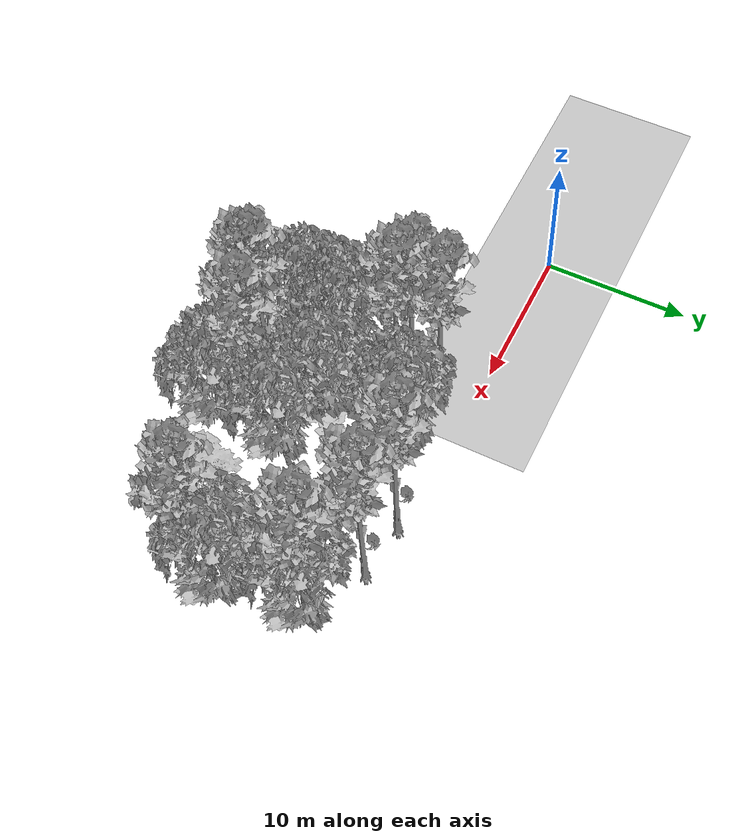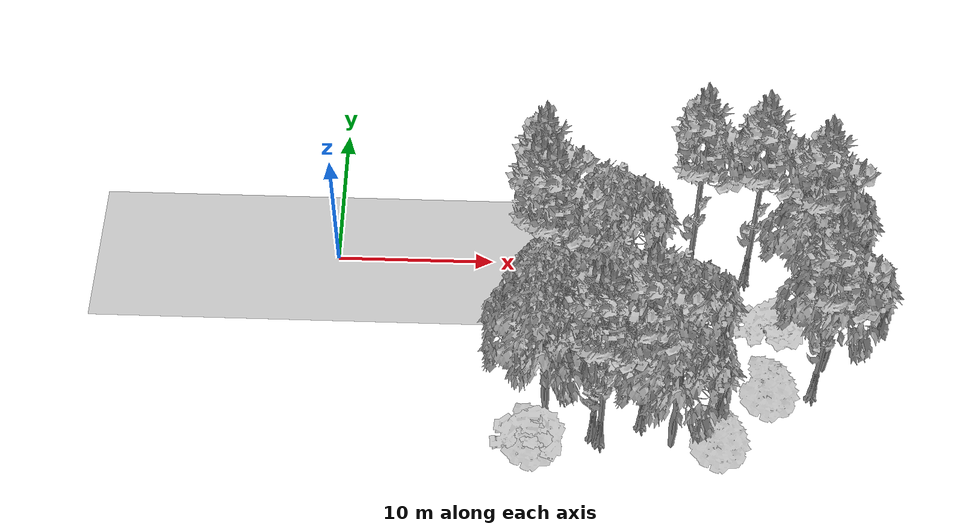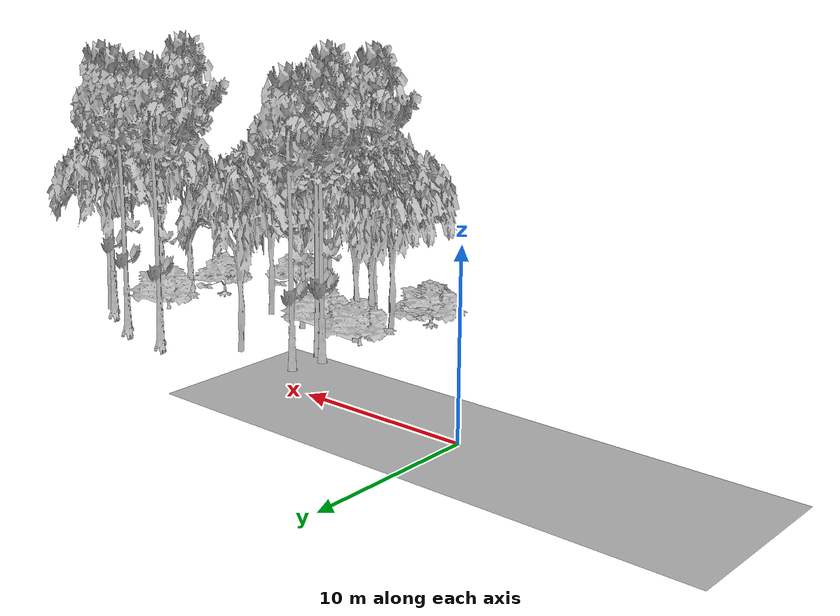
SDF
<sdf version="1.7">
 <world name="default">
  <model name="ground_plane">
   <static>1</static>
   <link name="link">
    <collision name="collision">
     <pose>-50 0 0 0 -0 0</pose>
     <geometry><plane><normal>0 0 1</normal><size>100 100</size></plane></geometry>
     <surface><contact><ode><min_depth>0.01</min_depth><max_vel>0</max_vel></ode></contact></surface>
    </collision>
    <visual name="grass">
     <cast_shadows>0</cast_shadows>
     <geometry>
      <mesh>
       <scale>0.5814285714285714 0.18142857142857144 0.1</scale>
       <uri>file://grass_plane/meshes/grass_plane.dae</uri>
      </mesh>
     </geometry>
    </visual>
   </link>
  </model>
  <model name="Tree 3">
   <static>1</static>
   <pose>17.722591240780247 -2.5185927758991955 0 1.57079 -0 0</pose>
   <link name="link">
    <collision name="collision">
     <geometry><mesh><scale>3.5 5 3.5</scale><uri>model://tree_2/meshes/tree_2.obj</uri></mesh></geometry>
    </collision>
    <visual name="visual">
     <geometry><mesh><scale>3.5 5 3.5</scale><uri>model://tree_2/meshes/tree_2.obj</uri></mesh></geometry>
    </visual>
   </link>
  </model>
  <model name="Tree 20">
   <static>1</static>
   <pose>16.454242641067495 -12.793850651289368 0 1.57079 -0 0</pose>
   <link name="link">
    <collision name="collision">
     <geometry><mesh><scale>3.5 5 3.5</scale><uri>model://tree_9/meshes/tree_9.obj</uri></mesh></geometry>
    </collision>
    <visual name="visual">
     <geometry><mesh><scale>3.5 5 3.5</scale><uri>model://tree_9/meshes/tree_9.obj</uri></mesh></geometry>
    </visual>
   </link>
  </model>
  <model name="Tree 24">
   <static>1</static>
   <pose>27.602788038337465 -5.3436573824634 0 1.57079 -0 0</pose>
   <link name="link">
    <collision name="collision">
     <geometry><mesh><scale>3 2 3</scale><uri>model://tree_3/meshes/tree_3.obj</uri></mesh></geometry>
    </collision>
    <visual name="visual">
     <geometry><mesh><scale>3 2 3</scale><uri>model://tree_3/meshes/tree_3.obj</uri></mesh></geometry>
    </visual>
   </link>
  </model>
  <model name="Tree 34">
   <static>1</static>
   <pose>27.09267132470289 -9.83745168477164 0 1.57079 -0 0</pose>
   <link name="link">
    <collision name="collision">
     <geometry><mesh><scale>4 2.5 4</scale><uri>model://tree_1/meshes/tree_1.obj</uri></mesh></geometry>
    </collision>
    <visual name="visual">
     <geometry><mesh><scale>4 2.5 4</scale><uri>model://tree_1/meshes/tree_1.obj</uri></mesh></geometry>
    </visual>
   </link>
  </model>
  <model name="Tree 52">
   <static>1</static>
   <pose>19.435046538628868 -11.908399850332778 0 1.57079 -0 0</pose>
   <link name="link">
    <collision name="collision">
     <geometry><mesh><scale>3.5 5 3.5</scale><uri>model://tree_9/meshes/tree_9.obj</uri></mesh></geometry>
    </collision>
    <visual name="visual">
     <geometry><mesh><scale>3.5 5 3.5</scale><uri>model://tree_9/meshes/tree_9.obj</uri></mesh></geometry>
    </visual>
   </link>
  </model>
  <model name="Tree 57">
   <static>1</static>
   <pose>18.00385599798709 -8.010313193416405 0 1.57079 -0 0</pose>
   <link name="link">
    <collision name="collision">
     <geometry><mesh><scale>3.5 5 3.5</scale><uri>model://tree_2/meshes/tree_2.obj</uri></mesh></geometry>
    </collision>
    <visual name="visual">
     <geometry><mesh><scale>3.5 5 3.5</scale><uri>model://tree_2/meshes/tree_2.obj</uri></mesh></geometry>
    </visual>
   </link>
  </model>
  <model name="Tree 65">
   <static>1</static>
   <pose>13.541130771491588 -8.121654438636444 0 1.57079 -0 0</pose>
   <link name="link">
    <collision name="collision">
     <geometry><mesh><scale>3 2 3</scale><uri>model://tree_3/meshes/tree_3.obj</uri></mesh></geometry>
    </collision>
    <visual name="visual">
     <geometry><mesh><scale>3 2 3</scale><uri>model://tree_3/meshes/tree_3.obj</uri></mesh></geometry>
    </visual>
   </link>
  </model>
  <model name="Tree 67">
   <static>1</static>
   <pose>13.300848614291318 -2.133708763998756 0 1.57079 -0 0</pose>
   <link name="link">
    <collision name="collision">
     <geometry><mesh><scale>3.5 5 3.5</scale><uri>model://tree_9/meshes/tree_9.obj</uri></mesh></geometry>
    </collision>
    <visual name="visual">
     <geometry><mesh><scale>3.5 5 3.5</scale><uri>model://tree_9/meshes/tree_9.obj</uri></mesh></geometry>
    </visual>
   </link>
  </model>
  <model name="Tree 77">
   <static>1</static>
   <pose>13.379054204391224 -9.042575613824981 0 1.57079 -0 0</pose>
   <link name="link">
    <collision name="collision">
     <geometry><mesh><scale>3.5 5 3.5</scale><uri>model://tree_2/meshes/tree_2.obj</uri></mesh></geometry>
    </collision>
    <visual name="visual">
     <geometry><mesh><scale>3.5 5 3.5</scale><uri>model://tree_2/meshes/tree_2.obj</uri></mesh></geometry>
    </visual>
   </link>
  </model>
  <model name="Tree 87">
   <static>1</static>
   <pose>21.50384578012188 -8.78247293183308 0 1.57079 -0 0</pose>
   <link name="link">
    <collision name="collision">
     <geometry><mesh><scale>3.5 5 3.5</scale><uri>model://tree_2/meshes/tree_2.obj</uri></mesh></geometry>
    </collision>
    <visual name="visual">
     <geometry><mesh><scale>3.5 5 3.5</scale><uri>model://tree_2/meshes/tree_2.obj</uri></mesh></geometry>
    </visual>
   </link>
  </model>
  <model name="Tree 96">
   <static>1</static>
   <pose>12.970861597530835 -4.231435875924941 0 1.57079 -0 0</pose>
   <link name="link">
    <collision name="collision">
     <geometry><mesh><scale>3.5 5 3.5</scale><uri>model://tree_9/meshes/tree_9.obj</uri></mesh></geometry>
    </collision>
    <visual name="visual">
     <geometry><mesh><scale>3.5 5 3.5</scale><uri>model://tree_9/meshes/tree_9.obj</uri></mesh></geometry>
    </visual>
   </link>
  </model>
  <model name="Tree 99">
   <static>1</static>
   <pose>13.859949696034562 -8.22762852864722 0 1.57079 -0 0</pose>
   <link name="link">
    <collision name="collision">
     <geometry><mesh><scale>3.5 5 3.5</scale><uri>model://tree_2/meshes/tree_2.obj</uri></mesh></geometry>
    </collision>
    <visual name="visual">
     <geometry><mesh><scale>3.5 5 3.5</scale><uri>model://tree_2/meshes/tree_2.obj</uri></mesh></geometry>
    </visual>
   </link>
  </model>
  <model name="Tree 145">
   <static>1</static>
   <pose>13.467658435989776 -11.084788486051226 0 1.57079 -0 0</pose>
   <link name="link">
    <collision name="collision">
     <geometry><mesh><scale>3.5 5 3.5</scale><uri>model://tree_2/meshes/tree_2.obj</uri></mesh></geometry>
    </collision>
    <visual name="visual">
     <geometry><mesh><scale>3.5 5 3.5</scale><uri>model://tree_2/meshes/tree_2.obj</uri></mesh></geometry>
    </visual>
   </link>
  </model>
  <model name="Tree 158">
   <static>1</static>
   <pose>13.871066521948364 -4.829152796474821 0 1.57079 -0 0</pose>
   <link name="link">
    <collision name="collision">
     <geometry><mesh><scale>3.5 5 3.5</scale><uri>model://tree_9/meshes/tree_9.obj</uri></mesh></geometry>
    </collision>
    <visual name="visual">
     <geometry><mesh><scale>3.5 5 3.5</scale><uri>model://tree_9/meshes/tree_9.obj</uri></mesh></geometry>
    </visual>
   </link>
  </model>
  <model name="Tree 160">
   <static>1</static>
   <pose>26.224962614947515 -0.8859838909379683 0 1.57079 -0 0</pose>
   <link name="link">
    <collision name="collision">
     <geometry><mesh><scale>3.5 5 3.5</scale><uri>model://tree_9/meshes/tree_9.obj</uri></mesh></geometry>
    </collision>
    <visual name="visual">
     <geometry><mesh><scale>3.5 5 3.5</scale><uri>model://tree_9/meshes/tree_9.obj</uri></mesh></geometry>
    </visual>
   </link>
  </model>
  <model name="Tree 168">
   <static>1</static>
   <pose>22.666884836087945 -0.48330158463533834 0 1.57079 -0 0</pose>
   <link name="link">
    <collision name="collision">
     <geometry><mesh><scale>3.5 5 3.5</scale><uri>model://tree_9/meshes/tree_9.obj</uri></mesh></geometry>
    </collision>
    <visual name="visual">
     <geometry><mesh><scale>3.5 5 3.5</scale><uri>model://tree_9/meshes/tree_9.obj</uri></mesh></geometry>
    </visual>
   </link>
  </model>
  <model name="Tree 176">
   <static>1</static>
   <pose>30.7456013333792 -7.543272037547877 0 1.57079 -0 0</pose>
   <link name="link">
    <collision name="collision">
     <geometry><mesh><scale>3.5 5 3.5</scale><uri>model://tree_2/meshes/tree_2.obj</uri></mesh></geometry>
    </collision>
    <visual name="visual">
     <geometry><mesh><scale>3.5 5 3.5</scale><uri>model://tree_2/meshes/tree_2.obj</uri></mesh></geometry>
    </visual>
   </link>
  </model>
  <model name="Tree 180">
   <static>1</static>
   <pose>12.601912814528603 -13.78671602169097 0 1.57079 -0 0</pose>
   <link name="link">
    <collision name="collision">
     <geometry><mesh><scale>3 2 3</scale><uri>model://tree_3/meshes/tree_3.obj</uri></mesh></geometry>
    </collision>
    <visual name="visual">
     <geometry><mesh><scale>3 2 3</scale><uri>model://tree_3/meshes/tree_3.obj</uri></mesh></geometry>
    </visual>
   </link>
  </model>
  <model name="Tree 228">
   <static>1</static>
   <pose>30.035211497838986 -9.416094408313192 0 1.57079 -0 0</pose>
   <link name="link">
    <collision name="collision">
     <geometry><mesh><scale>3.5 5 3.5</scale><uri>model://tree_9/meshes/tree_9.obj</uri></mesh></geometry>
    </collision>
    <visual name="visual">
     <geometry><mesh><scale>3.5 5 3.5</scale><uri>model://tree_9/meshes/tree_9.obj</uri></mesh></geometry>
    </visual>
   </link>
  </model>
  <model name="Tree 232">
   <static>1</static>
   <pose>29.698101812423488 -2.6110044786475157 0 1.57079 -0 0</pose>
   <link name="link">
    <collision name="collision">
     <geometry><mesh><scale>3.5 5 3.5</scale><uri>model://tree_9/meshes/tree_9.obj</uri></mesh></geometry>
    </collision>
    <visual name="visual">
     <geometry><mesh><scale>3.5 5 3.5</scale><uri>model://tree_9/meshes/tree_9.obj</uri></mesh></geometry>
    </visual>
   </link>
  </model>
  <model name="Tree 252">
   <static>1</static>
   <pose>30.012053954687232 -2.6419237940723015 0 1.57079 -0 0</pose>
   <link name="link">
    <collision name="collision">
     <geometry><mesh><scale>3.5 5 3.5</scale><uri>model://tree_2/meshes/tree_2.obj</uri></mesh></geometry>
    </collision>
    <visual name="visual">
     <geometry><mesh><scale>3.5 5 3.5</scale><uri>model://tree_2/meshes/tree_2.obj</uri></mesh></geometry>
    </visual>
   </link>
  </model>
  <model name="Tree 259">
   <static>1</static>
   <pose>12.551927262218399 -13.70781435685452 0 1.57079 -0 0</pose>
   <link name="link">
    <collision name="collision">
     <geometry><mesh><scale>4 2.5 4</scale><uri>model://tree_1/meshes/tree_1.obj</uri></mesh></geometry>
    </collision>
    <visual name="visual">
     <geometry><mesh><scale>4 2.5 4</scale><uri>model://tree_1/meshes/tree_1.obj</uri></mesh></geometry>
    </visual>
   </link>
  </model>
  <model name="Tree 267">
   <static>1</static>
   <pose>16.878086690865516 -13.178166413678811 0 1.57079 -0 0</pose>
   <link name="link">
    <collision name="collision">
     <geometry><mesh><scale>3.5 5 3.5</scale><uri>model://tree_9/meshes/tree_9.obj</uri></mesh></geometry>
    </collision>
    <visual name="visual">
     <geometry><mesh><scale>3.5 5 3.5</scale><uri>model://tree_9/meshes/tree_9.obj</uri></mesh></geometry>
    </visual>
   </link>
  </model>
  <model name="Tree 273">
   <static>1</static>
   <pose>23.94284079217789 -13.489716674567372 0 1.57079 -0 0</pose>
   <link name="link">
    <collision name="collision">
     <geometry><mesh><scale>4 2.5 4</scale><uri>model://tree_1/meshes/tree_1.obj</uri></mesh></geometry>
    </collision>
    <visual name="visual">
     <geometry><mesh><scale>4 2.5 4</scale><uri>model://tree_1/meshes/tree_1.obj</uri></mesh></geometry>
    </visual>
   </link>
  </model>
  <model name="Tree 274">
   <static>1</static>
   <pose>17.128371636641333 -8.686926795414898 0 1.57079 -0 0</pose>
   <link name="link">
    <collision name="collision">
     <geometry><mesh><scale>3 2 3</scale><uri>model://tree_3/meshes/tree_3.obj</uri></mesh></geometry>
    </collision>
    <visual name="visual">
     <geometry><mesh><scale>3 2 3</scale><uri>model://tree_3/meshes/tree_3.obj</uri></mesh></geometry>
    </visual>
   </link>
  </model>
  <model name="Tree 298">
   <static>1</static>
   <pose>21.178242349154885 -13.273774817478145 0 1.57079 -0 0</pose>
   <link name="link">
    <collision name="collision">
     <geometry><mesh><scale>3.5 5 3.5</scale><uri>model://tree_2/meshes/tree_2.obj</uri></mesh></geometry>
    </collision>
    <visual name="visual">
     <geometry><mesh><scale>3.5 5 3.5</scale><uri>model://tree_2/meshes/tree_2.obj</uri></mesh></geometry>
    </visual>
   </link>
  </model>
 </world>
</sdf>
